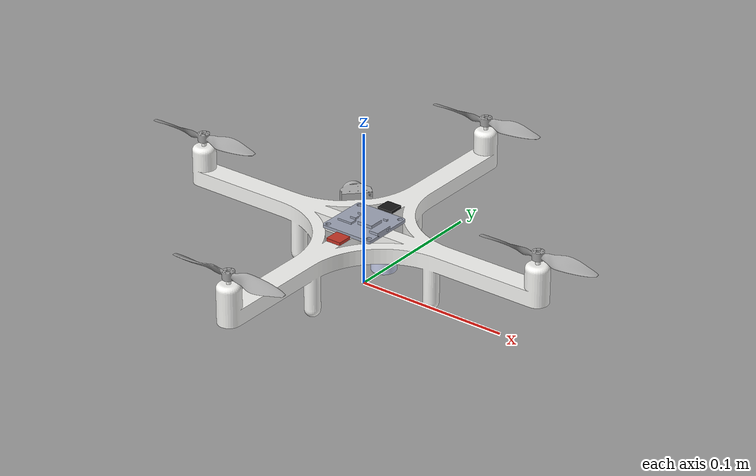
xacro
<?xml version="1.0" ?>
<robot name="drone_v2" xmlns:xacro="http://www.ros.org/wiki/xacro">

<xacro:include filename="$(find drone_v2_description)/urdf/materials.xacro" />
<xacro:include filename="$(find drone_v2_description)/urdf/drone_v2.trans" />
<xacro:include filename="$(find drone_v2_description)/urdf/drone_v2.gazebo" />
<link name="base_link">
  <inertial>
    <origin xyz="-3.2693664280996936e-05 3.26936641863577e-05 0.03462216984157225" rpy="0 0 0"/>
    <mass value="0.11176806889135754"/>
    <inertia ixx="0.000351" iyy="0.000351" izz="0.000689" ixy="0.0" iyz="-0.0" ixz="0.0"/>
  </inertial>
  <visual>
    <origin xyz="0 0 0" rpy="0 0 0"/>
    <geometry>
      <mesh filename="package://drone_v2_description/meshes/base_link.stl" scale="0.001 0.001 0.001"/>
    </geometry>
    <material name="paint_enamel_glossy_white"/>
  </visual>
  <collision>
    <origin xyz="0 0 0" rpy="0 0 0"/>
    <geometry>
      <mesh filename="package://drone_v2_description/meshes/base_link.stl" scale="0.001 0.001 0.001"/>
    </geometry>
  </collision>
</link>

<link name="Propeller_1_1">
  <inertial>
    <origin xyz="4.904278330664091e-09 5.2279113116338036e-09 0.0021749316888994355" rpy="0 0 0"/>
    <mass value="0.005325219391086306"/>
    <inertia ixx="0.0" iyy="2e-06" izz="2e-06" ixy="0.0" iyz="-0.0" ixz="-0.0"/>
  </inertial>
  <visual>
    <origin xyz="0.125 0.0 -0.05825" rpy="0 0 0"/>
    <geometry>
      <mesh filename="package://drone_v2_description/meshes/Propeller_1_1.stl" scale="0.001 0.001 0.001"/>
    </geometry>
    <material name="steel_satin"/>
  </visual>
  <collision>
    <origin xyz="0.125 0.0 -0.05825" rpy="0 0 0"/>
    <geometry>
      <mesh filename="package://drone_v2_description/meshes/Propeller_1_1.stl" scale="0.001 0.001 0.001"/>
    </geometry>
  </collision>
</link>

<link name="Propeller_2_1">
  <inertial>
    <origin xyz="4.904278347872548e-09 5.227911353822279e-09 0.0021749316888994355" rpy="0 0 0"/>
    <mass value="0.005325219391086306"/>
    <inertia ixx="0.0" iyy="2e-06" izz="2e-06" ixy="0.0" iyz="-0.0" ixz="-0.0"/>
  </inertial>
  <visual>
    <origin xyz="-0.0 -0.125 -0.05825" rpy="0 0 0"/>
    <geometry>
      <mesh filename="package://drone_v2_description/meshes/Propeller_2_1.stl" scale="0.001 0.001 0.001"/>
    </geometry>
    <material name="steel_satin"/>
  </visual>
  <collision>
    <origin xyz="-0.0 -0.125 -0.05825" rpy="0 0 0"/>
    <geometry>
      <mesh filename="package://drone_v2_description/meshes/Propeller_2_1.stl" scale="0.001 0.001 0.001"/>
    </geometry>
  </collision>
</link>

<link name="Propeller_3_1">
  <inertial>
    <origin xyz="4.904278344541879e-09 5.2279113416098256e-09 0.0021749316888994355" rpy="0 0 0"/>
    <mass value="0.005325219391086306"/>
    <inertia ixx="0.0" iyy="2e-06" izz="2e-06" ixy="0.0" iyz="-0.0" ixz="-0.0"/>
  </inertial>
  <visual>
    <origin xyz="-0.125 -0.0 -0.05825" rpy="0 0 0"/>
    <geometry>
      <mesh filename="package://drone_v2_description/meshes/Propeller_3_1.stl" scale="0.001 0.001 0.001"/>
    </geometry>
    <material name="steel_satin"/>
  </visual>
  <collision>
    <origin xyz="-0.125 -0.0 -0.05825" rpy="0 0 0"/>
    <geometry>
      <mesh filename="package://drone_v2_description/meshes/Propeller_3_1.stl" scale="0.001 0.001 0.001"/>
    </geometry>
  </collision>
</link>

<link name="Propeller_4_1">
  <inertial>
    <origin xyz="4.9042784033837e-09 -5.22791140933343e-09 0.002825068311100583" rpy="0 0 0"/>
    <mass value="0.005325219391086306"/>
    <inertia ixx="0.0" iyy="2e-06" izz="2e-06" ixy="-0.0" iyz="-0.0" ixz="0.0"/>
  </inertial>
  <visual>
    <origin xyz="-0.0 0.125 -0.05825" rpy="0 0 0"/>
    <geometry>
      <mesh filename="package://drone_v2_description/meshes/Propeller_4_1.stl" scale="0.001 0.001 0.001"/>
    </geometry>
    <material name="steel_satin"/>
  </visual>
  <collision>
    <origin xyz="-0.0 0.125 -0.05825" rpy="0 0 0"/>
    <geometry>
      <mesh filename="package://drone_v2_description/meshes/Propeller_4_1.stl" scale="0.001 0.001 0.001"/>
    </geometry>
  </collision>
</link>

<link name="imu_1">
  <inertial>
    <origin xyz="-1.7763568394002505e-17 0.025 0.000999999999999994" rpy="0 0 0"/>
    <mass value="0.0012039999999999996"/>
    <inertia ixx="0.0" iyy="0.0" izz="0.0" ixy="0.0" iyz="-0.0" ixz="0.0"/>
  </inertial>
  <visual>
    <origin xyz="0.0 -0.0 -0.04" rpy="0 0 0"/>
    <geometry>
      <mesh filename="package://drone_v2_description/meshes/imu_1.stl" scale="0.001 0.001 0.001"/>
    </geometry>
    <material name="plastic_matte_black"/>
  </visual>
  <collision>
    <origin xyz="0.0 -0.0 -0.04" rpy="0 0 0"/>
    <geometry>
      <mesh filename="package://drone_v2_description/meshes/imu_1.stl" scale="0.001 0.001 0.001"/>
    </geometry>
  </collision>
</link>

<link name="gps_module_1">
  <inertial>
    <origin xyz="-1.7763568394002505e-17 -0.025 0.0010000000000000078" rpy="0 0 0"/>
    <mass value="0.0012039999999999996"/>
    <inertia ixx="0.0" iyy="0.0" izz="0.0" ixy="0.0" iyz="-0.0" ixz="-0.0"/>
  </inertial>
  <visual>
    <origin xyz="0.0 -0.0 -0.04" rpy="0 0 0"/>
    <geometry>
      <mesh filename="package://drone_v2_description/meshes/gps_module_1.stl" scale="0.001 0.001 0.001"/>
    </geometry>
    <material name="paint_enamel_glossy_red"/>
  </visual>
  <collision>
    <origin xyz="0.0 -0.0 -0.04" rpy="0 0 0"/>
    <geometry>
      <mesh filename="package://drone_v2_description/meshes/gps_module_1.stl" scale="0.001 0.001 0.001"/>
    </geometry>
  </collision>
</link>

<link name="MATEK_F405-STD_1">
  <inertial>
    <origin xyz="0.0017867761072025152 -0.00030064547572321553 0.0009697507384227866" rpy="0 0 0"/>
    <mass value="0.027601673601549786"/>
    <inertia ixx="2e-06" iyy="3e-06" izz="5e-06" ixy="0.0" iyz="0.0" ixz="-0.0"/>
  </inertial>
  <visual>
    <origin xyz="0.0 -0.0 -0.04" rpy="0 0 0"/>
    <geometry>
      <mesh filename="package://drone_v2_description/meshes/MATEK_F405-STD_1.stl" scale="0.001 0.001 0.001"/>
    </geometry>
    <material name="opaque158164182"/>
  </visual>
  <collision>
    <origin xyz="0.0 -0.0 -0.04" rpy="0 0 0"/>
    <geometry>
      <mesh filename="package://drone_v2_description/meshes/MATEK_F405-STD_1.stl" scale="0.001 0.001 0.001"/>
    </geometry>
  </collision>
</link>

<link name="Ultrasonic_Sensor_1">
  <inertial>
    <origin xyz="0.0018565138253475923 5.43826192309282e-06 -0.0068692733526249" rpy="0 0 0"/>
    <mass value="0.04926245433697734"/>
    <inertia ixx="2e-06" iyy="1e-05" izz="1e-05" ixy="0.0" iyz="-0.0" ixz="0.0"/>
  </inertial>
  <visual>
    <origin xyz="0.0 -0.0 -0.03" rpy="0 0 0"/>
    <geometry>
      <mesh filename="package://drone_v2_description/meshes/Ultrasonic_Sensor_1.stl" scale="0.001 0.001 0.001"/>
    </geometry>
    <material name="opaque202209238"/>
  </visual>
  <collision>
    <origin xyz="0.0 -0.0 -0.03" rpy="0 0 0"/>
    <geometry>
      <mesh filename="package://drone_v2_description/meshes/Ultrasonic_Sensor_1.stl" scale="0.001 0.001 0.001"/>
    </geometry>
  </collision>
</link>

<link name="FPV_Cam_1">
  <inertial>
    <origin xyz="-0.006156870770691856 0.0062279885990704775 -8.986183691399308e-05" rpy="0 0 0"/>
    <mass value="0.045288211266809014"/>
    <inertia ixx="2e-06" iyy="3e-06" izz="3e-06" ixy="0.0" iyz="-0.0" ixz="0.0"/>
  </inertial>
  <visual>
    <origin xyz="0.02292 -0.02292 -0.035" rpy="0 0 0"/>
    <geometry>
      <mesh filename="package://drone_v2_description/meshes/FPV_Cam_1.stl" scale="0.001 0.001 0.001"/>
    </geometry>
    <material name="silver_default"/>
  </visual>
  <collision>
    <origin xyz="0.02292 -0.02292 -0.035" rpy="0 0 0"/>
    <geometry>
      <mesh filename="package://drone_v2_description/meshes/FPV_Cam_1.stl" scale="0.001 0.001 0.001"/>
    </geometry>
  </collision>
</link>

<joint name="motor_1" type="continuous">
  <origin xyz="-0.125 0.0 0.05825" rpy="0 0 0"/>
  <parent link="base_link"/>
  <child link="Propeller_1_1"/>
  <axis xyz="0.0 0.0 1.0"/>
</joint>

<joint name="motor_2" type="continuous">
  <origin xyz="0.0 0.125 0.05825" rpy="0 0 0"/>
  <parent link="base_link"/>
  <child link="Propeller_2_1"/>
  <axis xyz="0.0 0.0 1.0"/>
</joint>

<joint name="motor_3" type="continuous">
  <origin xyz="0.125 0.0 0.05825" rpy="0 0 0"/>
  <parent link="base_link"/>
  <child link="Propeller_3_1"/>
  <axis xyz="0.0 0.0 1.0"/>
</joint>

<joint name="motor_4" type="continuous">
  <origin xyz="0.0 -0.125 0.05825" rpy="0 0 0"/>
  <parent link="base_link"/>
  <child link="Propeller_4_1"/>
  <axis xyz="0.0 0.0 1.0"/>
</joint>

<joint name="Rigid5" type="fixed">
  <origin xyz="0.0 0.0 0.04" rpy="0 0 0"/>
  <parent link="base_link"/>
  <child link="imu_1"/>
</joint>

<joint name="Rigid6" type="fixed">
  <origin xyz="0.0 0.0 0.04" rpy="0 0 0"/>
  <parent link="base_link"/>
  <child link="gps_module_1"/>
</joint>

<joint name="Rigid7" type="fixed">
  <origin xyz="0.0 0.0 0.04" rpy="0 0 0"/>
  <parent link="base_link"/>
  <child link="MATEK_F405-STD_1"/>
</joint>

<joint name="Rigid8" type="fixed">
  <origin xyz="0.0 0.0 0.03" rpy="0 0 0"/>
  <parent link="base_link"/>
  <child link="Ultrasonic_Sensor_1"/>
</joint>

<joint name="Rigid9" type="fixed">
  <origin xyz="-0.02292 0.02292 0.035" rpy="0 0 0"/>
  <parent link="base_link"/>
  <child link="FPV_Cam_1"/>
</joint>

</robot>

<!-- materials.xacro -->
<robot name="drone_v2" xmlns:xacro="http://www.ros.org/wiki/xacro" >

<material name="silver_default">
  <color rgba="0.700 0.700 0.700 1.000"/>
</material>
<material name="paint_enamel_glossy_white">
  <color rgba="0.9647058823529412 0.9647058823529412 0.9529411764705882 1.0"/>
</material>
<material name="steel_satin">
  <color rgba="0.6274509803921569 0.6274509803921569 0.6274509803921569 1.0"/>
</material>
<material name="opaque158164182">
  <color rgba="0.6196078431372549 0.6431372549019608 0.7137254901960784 1.0"/>
</material>
<material name="plastic_matte_black">
  <color rgba="0.09803921568627451 0.09803921568627451 0.09803921568627451 1.0"/>
</material>
<material name="paint_enamel_glossy_red">
  <color rgba="0.7686274509803922 0.20784313725490197 0.15294117647058825 1.0"/>
</material>
<material name="opaque202209238">
  <color rgba="0.792156862745098 0.8196078431372549 0.9333333333333333 1.0"/>
</material>

</robot>

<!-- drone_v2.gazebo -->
<robot name="drone_v2" xmlns:xacro="http://www.ros.org/wiki/xacro" >

<xacro:property name="body_color" value="Gazebo/Silver" />

<gazebo>
  <plugin name="control" filename="libgazebo_ros_control.so"/>
</gazebo>
<gazebo reference="base_link">
  <material>${body_color}</material>
  <mu1>0.2</mu1>
  <mu2>0.2</mu2>
  <selfCollide>true</selfCollide>
  <gravity>true</gravity>
</gazebo>

<gazebo reference="Propeller_1_1">
  <material>${body_color}</material>
  <mu1>0.2</mu1>
  <mu2>0.2</mu2>
  <selfCollide>true</selfCollide>
</gazebo>

<gazebo reference="Propeller_2_1">
  <material>${body_color}</material>
  <mu1>0.2</mu1>
  <mu2>0.2</mu2>
  <selfCollide>true</selfCollide>
</gazebo>

<gazebo reference="Propeller_3_1">
  <material>${body_color}</material>
  <mu1>0.2</mu1>
  <mu2>0.2</mu2>
  <selfCollide>true</selfCollide>
</gazebo>

<gazebo reference="Propeller_4_1">
  <material>${body_color}</material>
  <mu1>0.2</mu1>
  <mu2>0.2</mu2>
  <selfCollide>true</selfCollide>
</gazebo>

<gazebo reference="imu_1">
  <material>${body_color}</material>
  <mu1>0.2</mu1>
  <mu2>0.2</mu2>
  <selfCollide>true</selfCollide>
</gazebo>

<gazebo reference="gps_module_1">
  <material>${body_color}</material>
  <mu1>0.2</mu1>
  <mu2>0.2</mu2>
  <selfCollide>true</selfCollide>
</gazebo>

<gazebo reference="MATEK_F405-STD_1">
  <material>${body_color}</material>
  <mu1>0.2</mu1>
  <mu2>0.2</mu2>
  <selfCollide>true</selfCollide>
</gazebo>

<gazebo reference="Ultrasonic_Sensor_1">
  <material>${body_color}</material>
  <mu1>0.2</mu1>
  <mu2>0.2</mu2>
  <selfCollide>true</selfCollide>
</gazebo>

<gazebo reference="FPV_Cam_1">
  <material>${body_color}</material>
  <mu1>0.2</mu1>
  <mu2>0.2</mu2>
  <selfCollide>true</selfCollide>
</gazebo>

</robot>
